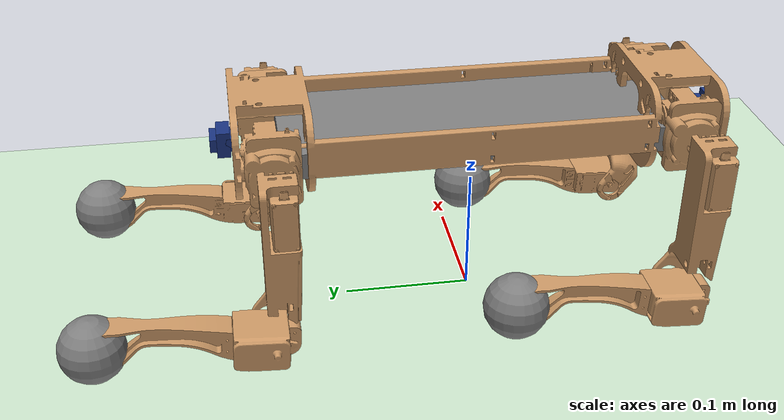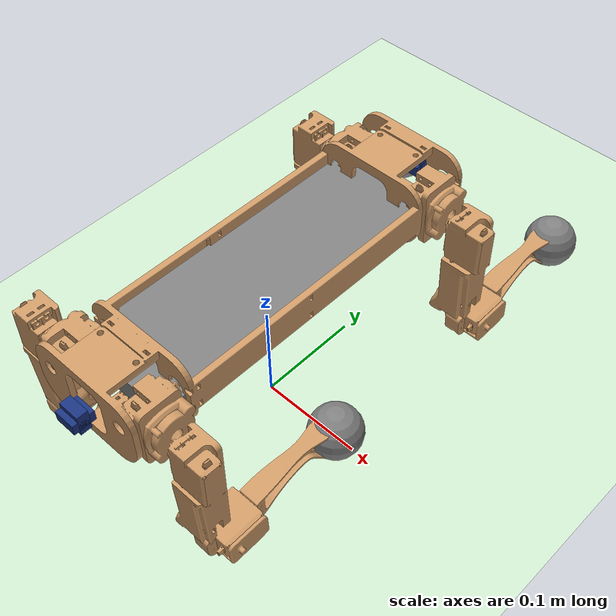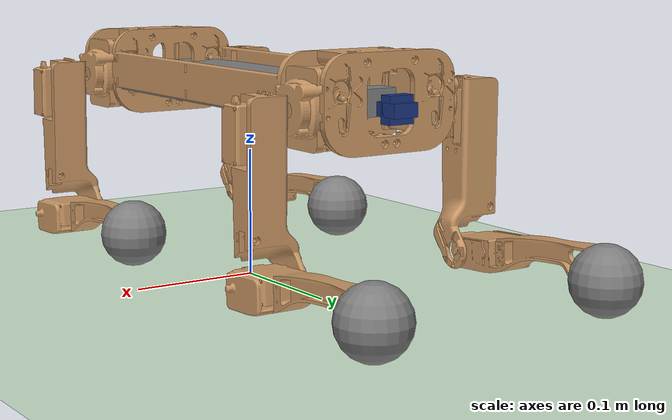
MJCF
<mujoco model="qrpfra">
  <compiler angle="degree" coordinate="local" inertiafromgeom="true" />
  <option integrator="RK4" timestep="0.02" gravity="0 0 -9.81" density="0.5"/>

  <default>
    <joint armature="1" damping="1" limited="true"/>
    <geom conaffinity="0" condim="3" density="1.0" friction="1 0.5 0.5" margin="0.01" rgba="0.8 0.6 0.4 1"/>
  </default>

  <asset>
    <texture builtin="gradient" height="100" rgb1="1 1 1" rgb2="0 0 0" type="skybox" width="100"/>
    <texture builtin="flat" height="1278" mark="cross" markrgb="1 1 1" name="texgeom" random="0.01" rgb1="0 0 0.4" rgb2="0.8 0.6 0.4" type="cube" width="127"/>
    <texture builtin="checker"  name="texplane" rgb1="0.02 0.02 0.12" rgb2="0.98 0.98 0.88" type="2d" width="1000" height="1000"/>
    <material name="MatPlane" reflectance="0.8" shininess="1" specular="1" texrepeat="60 60" texture="texplane"/>
    <material name="geom" texture="texgeom" texuniform="true"/>
    <mesh name="base_link_new" file="/Users/deniz/PycharmProjects/mujoco_reinforcement_research/QRPfRA_deneme/Assets/base_link_new.stl"/>
    <mesh name="Left_Hind_Limb" file="/Users/deniz/PycharmProjects/mujoco_reinforcement_research/QRPfRA_deneme/Assets/Left_Hindlimb.stl"/>
    <mesh name="Left_MidLimb" file="/Users/deniz/PycharmProjects/mujoco_reinforcement_research/QRPfRA_deneme/Assets/Left_Midlimb.stl"/>
    <mesh name="Left_Wrist" file="/Users/deniz/PycharmProjects/mujoco_reinforcement_research/QRPfRA_deneme/Assets/Left_Wrist.stl"/>
    <mesh name="Right_Hind_Limb" file="/Users/deniz/PycharmProjects/mujoco_reinforcement_research/QRPfRA_deneme/Assets/Right_Hindlimb.stl"/>
    <mesh name="Right_MidLimb" file="/Users/deniz/PycharmProjects/mujoco_reinforcement_research/QRPfRA_deneme/Assets/Right_Midlimb.stl"/>
    <mesh name="Right_Wrist" file="/Users/deniz/PycharmProjects/mujoco_reinforcement_research/QRPfRA_deneme/Assets/Right_Wrist.stl"/>
    <!--mesh name="scanned_stl" file="/Users/deniz/Desktop/deneme.stl"/-->
  </asset>

  <worldbody>
    <light cutoff="100" diffuse="1 1 1" dir="-0 0 -1.3" directional="true" exponent="1" pos="0 0 1.3" specular=".1 .1 .1"/>
    <geom conaffinity="1" condim="3" material="MatPlane" name="floor" pos="0 0 0" rgba="0.8 0.9 0.8 1" size="40 40 40" type="plane"/>
    <!--geom type="mesh" mesh="scanned_stl" pos="0 0 0.3"/-->

    <body name="base_link" pos="0 0 0.15">
      <camera name="track" mode="trackcom" pos="0 -3 0.3" xyaxes="1 0 0 0 0 1"/>
      <geom type="mesh" mesh="base_link_new" mass="2"/>
      <joint armature="0" damping="0" limited="false" margin="0.01" name="root" pos="0 0 0" type="free"/>
      <site name="base_site" type="box" size="0.05 0.15 0.01"  pos="0.0 0.0 0.0" euler="180 0 0"/>

      <site name="base_site_front" type="box" size="0.01 0.01 0.005"  pos="0.0 0.19 0.0" rgba="0.1 0.2 0.5 1" euler="-90 0 0"/>
      <site name="base_site_front_range" type="box" size="0.01 0.01 0.005"  pos="0.0 0.19 0.0" rgba="0.1 0.2 0.5 1" euler="-180 0 0"/>
      <site name="base_site_rear" type="box" size="0.01 0.01 0.005"  pos="0.0 -0.19 0.0" rgba="0.1 0.2 0.5 1" euler="90 0 0"/>
      <site name="base_site_rear_range" type="box" size="0.01 0.01 0.005"  pos="0.0 -0.19 0.0" rgba="0.1 0.2 0.5 1" euler="180 0 0"/>

      <body name="front_Left_Hind_Limb" pos="-0.04 0.18 0.01">
        <joint axis="0 1 0" name="FL_hind_to_base" pos="0 0 0" range="-45 45" type="hinge" damping="90"/>
        <geom type="mesh" mesh="Left_Hind_Limb" mass="0.8"/>
        <body name="front_Left_MidLimb" pos="-0.025 -0.026 -0.01">
          <joint axis="1 0 0" name="FL_mid_to_base" pos="0 0 0" range="-60 60" type="hinge" damping="90"/>
          <geom type="mesh" mesh="Left_MidLimb" mass="1"/>
          <body name="front_Left_Wrist" pos="-0.01 0.01 -0.11">
            <joint axis="1 0 0" name="FL_wrist_to_mid" pos="0 0 0" range="-60 60" type="hinge" damping="90"/>
            <geom type="mesh" mesh="Left_Wrist" mass="1"/>
            <site name="FL_foot" type="sphere" size="0.025" pos="-0.02 0.13 0" euler="0 0 0"/>
          </body>
        </body>
      </body>

      <body name="front_Right_Hind_Limb" pos="0.04 0.18 0.01">
        <joint axis="0 1 0" name="FR_hind_to_base" pos="0 0 0" range="-45 45" type="hinge" damping="90"/>
        <geom type="mesh" mesh="Right_Hind_Limb" mass="0.8"/>
        <body name="front_Right_MidLimb" pos="0.05 -0.026 -0.01">
          <joint axis="-1 0 0" name="FR_mid_to_base" pos="0 0 0" range="-60 60" type="hinge" damping="90" />
          <geom type="mesh" mesh="Right_MidLimb" mass="1"/>
          <body name="front_Right_Wrist" pos="-0.01 0.01 -0.11">
            <joint axis="-1 0 0" name="FR_wrist_to_mid" pos="0 0 0" range="-60 60" type="hinge" damping="90"/>
            <geom type="mesh" mesh="Right_Wrist" mass="1"/>
            <site name="FR_foot" type="sphere" size="0.025" pos="0.015 0.13 0" euler="0 0 0"/>
          </body>
        </body>
      </body>

      <body name="rear_Left_Hind_Limb" pos="-0.04 -0.13 0.013">
        <joint axis="0 1 0" name="RL_hind_to_base" pos="0 0 0" range="-45 45" type="hinge" damping="90"/>
        <geom type="mesh" mesh="Left_Hind_Limb" mass="0.8"/>
        <body name="rear_Left_MidLimb" pos="-0.025 -0.026 -0.01">
          <joint axis="1 0 0" name="RL_mid_to_base" pos="0 0 0" range="-60 60" type="hinge" damping="90" />
          <geom type="mesh" mesh="Left_MidLimb" mass="1"/>
          <body name="rear_Left_Wrist" pos="-0.01 0.01 -0.11">
            <joint axis="1 0 0" name="RL_wrist_to_mid" pos="0 0 0" range="-60 60" type="hinge" damping="90"/>
            <geom type="mesh" mesh="Left_Wrist" mass="1"/>
            <site name="RL_foot" type="sphere" size="0.025" pos="-0.02 0.13 0" euler="0 0 0"/>
          </body>
        </body>
      </body>

      <body name="rear_Right_Hind_Limb" pos="0.04 -0.13 0.011">
        <joint axis="0 1 0" name="RR_hind_to_base" pos="0 0 0" range="-45 45" type="hinge" damping="90"/>
        <geom type="mesh" mesh="Right_Hind_Limb" mass="0.8"/>
        <body name="rear_Right_MidLimb" pos="0.05 -0.026 -0.01">
          <joint axis="-1 0 0" name="RR_mid_to_base" pos="0 0 0" range="-60 60" type="hinge" damping="90" />
          <geom type="mesh" mesh="Right_MidLimb" mass="1"/>
          <body name="rear_Right_Wrist" pos="-0.01 0.01 -0.11">
            <joint axis="-1 0 0" name="RR_wrist_to_mid" pos="0 0 0" range="-60 60" type="hinge" damping="90"/>
            <geom type="mesh" mesh="Right_Wrist" mass="1"/>
            <site name="RR_foot" type="sphere" size="0.025" pos="0.015 0.13 0" euler="0 0 0"/>
          </body>
        </body>
      </body>

    </body>
  </worldbody>
  <actuator>
    <motor name="FL_hind_to_base_pos_motor" ctrllimited="true" ctrlrange="-1 1" joint="FL_hind_to_base" gear="600" />
    <motor name="FL_mid_to_base_pos_motor" ctrllimited="true" ctrlrange="-1 1" joint="FL_mid_to_base"  gear="600" />
    <motor name="FL_wrist_to_mid_pos_motor" ctrllimited="true" ctrlrange="-1 1" joint="FL_wrist_to_mid"  gear="600" />

    <motor name="FR_hind_to_base_pos_motor" ctrllimited="true" ctrlrange="-1 1" joint="FR_hind_to_base" gear="600" />
    <motor name="FR_mid_to_base_pos_motor" ctrllimited="true" ctrlrange="-1 1" joint="FR_mid_to_base"  gear="600" />
    <motor name="FR_wrist_to_mid_pos_motor" ctrllimited="true" ctrlrange="-1 1" joint="FR_wrist_to_mid"  gear="600" />

    <motor name="RL_hind_to_base_pos_motor" ctrllimited="true" ctrlrange="-1 1" joint="RL_hind_to_base"  gear="600" />
    <motor name="RL_mid_to_base_pos_motor" ctrllimited="true" ctrlrange="-1 1" joint="RL_mid_to_base"  gear="600" />
    <motor name="RL_wrist_to_mid_pos_motor" ctrllimited="true" ctrlrange="-1 1" joint="RL_wrist_to_mid"  gear="600" />

    <motor name="RR_hind_to_base_pos_motor" ctrllimited="true" ctrlrange="-1 1" joint="RR_hind_to_base"  gear="600" />
    <motor name="RR_mid_to_base_pos_motor" ctrllimited="true" ctrlrange="-1 1" joint="RR_mid_to_base"  gear="600" />
    <motor name="RR_wrist_to_mid_pos_motor" ctrllimited="true" ctrlrange="-1 1" joint="RR_wrist_to_mid"  gear="600" />

    <!--Position Motors/-->

  </actuator>
  <sensor>
    <accelerometer name="base_acc" site="base_site"/>
    <gyro name="base_gyro" site="base_site"/>

    <rangefinder name="base_range_to_front_range" site="base_site_front_range"/>
    <rangefinder name="base_range_to_rear_range" site="base_site_rear_range"/>

    <rangefinder name="base_range_to_front" site="base_site_front"/>
    <rangefinder name="base_range_to_rear" site="base_site_rear"/>

    <jointpos name="FL_hind_to_base_angle" joint="FL_hind_to_base"/>
    <jointpos name="FL_mid_to_base_angle" joint="FL_mid_to_base"/>
    <jointpos name="FL_wrist_to_mid_angle" joint="FL_wrist_to_mid"/>

    <jointpos name="FR_hind_to_base_angle" joint="FR_hind_to_base"/>
    <jointpos name="FR_mid_to_base_angle" joint="FR_mid_to_base"/>
    <jointpos name="FR_wrist_to_mid_angle" joint="FR_wrist_to_mid"/>

    <jointpos name="RL_hind_to_base_angle" joint="RL_hind_to_base"/>
    <jointpos name="RL_mid_to_base_angle" joint="RL_mid_to_base"/>
    <jointpos name="RL_wrist_to_mid_angle" joint="RL_wrist_to_mid"/>

    <jointpos name="RR_wrist_to_mid_angle" joint="RR_wrist_to_mid"/>
    <jointpos name="RR_hind_to_base_angle" joint="RR_hind_to_base"/>
    <jointpos name="RR_mid_to_base_angle" joint="RR_mid_to_base"/>
  </sensor>
</mujoco>
